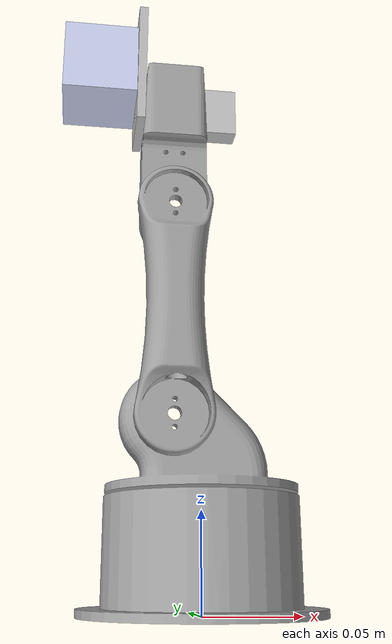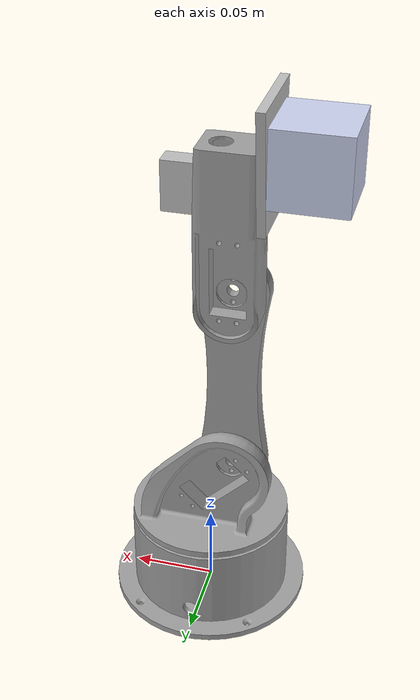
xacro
<?xml version="1.0" encoding="utf-8"?>
<robot name="robotic_arm" xmlns:xacro="http:///www.ros.org/wiki/xacro">
  <xacro:property name="use_ignition" default="false"/>
  <xacro:include filename="$(find robotic_arm)/urdf/Robot_Arm_control.xacro" />
  <xacro:include filename="$(find robotic_arm)/urdf/Robot_Arm_gazebo.xacro" />
  <xacro:if value="${use_ignition}">
    <xacro:property name="mesh_dir" value="/home/khaled/ros2_ws/src/robotic_arm/meshes"/>
  </xacro:if>
  <xacro:unless value="${use_ignition}">
    <xacro:property name="mesh_dir" value="package://robotic_arm/meshes"/>
  </xacro:unless>
  <link
    name="base_link">
    <inertial>
      <origin
        xyz="-7.5348E-09 -0.00013761 0.017995"
        rpy="0 0 0" />
      <mass
        value="0.83" />
      <inertia
        ixx="0.00014427"
        ixy="6.2688E-11"
        ixz="-2.1919E-11"
        iyy="0.00014507"
        iyz="-5.8994E-08"
        izz="0.00022021" />
    </inertial>
    <visual>
      <origin
        xyz="0 0 0"
        rpy="0 0 0" />
      <geometry>
        <mesh
          filename="${mesh_dir}/base_link.STL" />
      </geometry>
      <material
        name="">
        <color
          rgba="0.62745 0.62745 0.62745 1" />
      </material>

    </visual>
    <collision>
      <origin
        xyz="0 0 0"
        rpy="0 0 0" />
      <geometry>
        <mesh
          filename="${mesh_dir}/base_link.STL" />
      </geometry>
    </collision>
  </link>
  <link
    name="waist_Link">
    <inertial>
      <origin
        xyz="0.0074946 0.019383 -0.0014293"
        rpy="0 0 0" />
      <mass
        value="0.073648" />
      <inertia
        ixx="6.7954E-05"
        ixy="-6.43E-06"
        ixz="2.5439E-07"
        iyy="6.0133E-05"
        iyz="6.7307E-06"
        izz="5.0282E-05" />
    </inertial>
    <visual>
      <origin
        xyz="0 0 0"
        rpy="0 0 0" />
      <geometry>
        <mesh
          filename="${mesh_dir}/waist_Link.STL" />
      </geometry>
      <material
        name="">
        <color
          rgba="0.62745 0.62745 0.62745 1" />
      </material>
    </visual>
    <collision>
      <origin
        xyz="0 0 0"
        rpy="0 0 0" />
      <geometry>
        <mesh
          filename="${mesh_dir}/waist_Link.STL" />
      </geometry>
    </collision>
  </link>
  <joint
    name="base_waist_joint"
    type="revolute">
    <origin
      xyz="0 0 0.0575"
      rpy="1.5708 0 1.5708" />
    <parent
      link="base_link" />
    <child
      link="waist_Link" />
    <axis
      xyz="0 1 0" />
    <limit
      lower="-1.571"
      upper="1.571"
      effort="10"
      velocity="3" />
  </joint>
  <link
    name="arm_Link">
    <inertial>
      <origin
        xyz="1.0586E-07 0.06 -0.0049709"
        rpy="0 0 0" />
      <mass
        value="0.064059" />
      <inertia
        ixx="0.00010375"
        ixy="3.5389E-10"
        ixz="1.0836E-10"
        iyy="9.2286E-06"
        iyz="-4.5873E-12"
        izz="0.00010863" />
    </inertial>
    <visual>
      <origin
        xyz="0 0 0"
        rpy="0 0 0" />
      <geometry>
        <mesh
          filename="${mesh_dir}/arm_Link.STL" />
      </geometry>
      <material
        name="">
        <color
          rgba="0.62745 0.62745 0.62745 1" />
      </material>
    </visual>
    <collision>
      <origin
        xyz="0 0 0"
        rpy="0 0 0" />
      <geometry>
        <mesh
          filename="${mesh_dir}/arm_Link.STL" />
      </geometry>
    </collision>
  </link>
  <joint
    name="waist_arm_joint"
    type="revolute">
    <origin
      xyz="0 0.04028 -0.01391"
      rpy="0 1.5708 0" />
    <parent
      link="waist_Link" />
    <child
      link="arm_Link" />
    <axis
      xyz="0 0 1" />
    <limit
      lower="-1.571"
      upper="1.571"
      effort="10"
      velocity="3" />
  </joint>
  <link
    name="end_Link">
    <inertial>
      <origin
        xyz="0.041711 3.1659E-05 -0.00972"
        rpy="0 0 0" />
      <mass
        value="0.047098" />
      <inertia
        ixx="8.7227E-06"
        ixy="-6.9702E-08"
        ixz="-4.0365E-07"
        iyy="5.1401E-05"
        iyz="-1.8365E-10"
        izz="5.4665E-05" />
    </inertial>
    <visual>
      <origin
        xyz="0 0 0"
        rpy="0 0 0" />
      <geometry>
        <mesh
          filename="${mesh_dir}/end_Link.STL" />
      </geometry>
      <material
        name="">
        <color
          rgba="0.62745 0.62745 0.62745 1" />
      </material>
    </visual>
    <collision>
      <origin
        xyz="0 0 0"
        rpy="0 0 0" />
      <geometry>
        <mesh
          filename="${mesh_dir}/end_Link.STL" />
      </geometry>
    </collision>
  </link>
  <joint
    name="arm_end_joint"
    type="revolute">
    <origin
      xyz="0 0.12 0"
      rpy="3.1416 0 1.5708" />
    <parent
      link="arm_Link" />
    <child
      link="end_Link" />
    <axis
      xyz="0 0 -1" />
    <limit
      lower="-1.571"
      upper="1.571"
      effort="10"
      velocity="3" />
  </joint>
  <link
    name="support_Link">
    <inertial>
      <origin
        xyz="0.0096128 0.01329 0.0015"
        rpy="0 0 0" />
      <mass
        value="0.032654" />
      <inertia
        ixx="8.6378E-06"
        ixy="-1.6109E-07"
        ixz="3.8781E-22"
        iyy="1.0677E-05"
        iyz="-1.0792E-21"
        izz="1.2956E-05" />
    </inertial>
    <visual>
      <origin
        xyz="0 0 0"
        rpy="0 0 0" />
      <geometry>
        <mesh
          filename="${mesh_dir}/support_Link.STL" />
      </geometry>
      <material
        name="">
        <color
          rgba="0.75294 0.75294 0.75294 1" />
      </material>
    </visual>
    <collision>
      <origin
        xyz="0 0 0"
        rpy="0 0 0" />
      <geometry>
        <mesh
          filename="${mesh_dir}/support_Link.STL" />
      </geometry>
    </collision>
  </link>
  <joint
    name="end_support_joint"
    type="fixed">
    <origin
      xyz="0.065057 -0.0082418 -0.011"
      rpy="0 0 0" />
    <parent
      link="end_Link" />
    <child
      link="support_Link" />
    <axis
      xyz="0 0 0" />
  </joint>

  <link
    name="cam_Link">
    <inertial>
      <origin
        xyz="-0.04 -0.022 -0.021"
        rpy="0 0 0" />
      <mass
        value="0.079507" />
      <inertia
        ixx="2.4501E-05"
        ixy="-1.8211E-21"
        ixz="-5.7909E-22"
        iyy="2.4501E-05"
        iyz="-2.7946E-23"
        izz="2.4501E-05" />
    </inertial>
    <visual>
      <origin
        xyz="-0.04 -0.022 -0.021"
        rpy="0 0 0" />
      <geometry>
        <mesh
          filename="${mesh_dir}/cam_Link.STL" />
      </geometry>
      <material
        name="">
        <color
          rgba="0.79216 0.81961 0.93333 1" />
      </material>
    </visual>
    <collision>
      <origin
        xyz="0 0 0"
        rpy="0 0 0" />
      <geometry>
        <mesh
          filename="${mesh_dir}/cam_Link.STL" />
      </geometry>
    </collision>
  </link>
  <joint
    name="support_cam_joint"
    type="fixed">
    <origin
      xyz="0.04 0.0525 0.0005"
      rpy="-1.570 0 0" />
    <parent
      link="support_Link" />
    <child
      link="cam_Link" />
    <axis
      xyz="0 0 0" />
  </joint>

  <!-- Robot Tip -->
  <link name="tip_link"/>
  <joint name="support_tip_joint" type="fixed">
    <parent link="support_Link"/>
    <child link="tip_link"/>
    <origin xyz="0.025 0.004 0.001" rpy="0 0 0"/>
  </joint>
  <!-- fix the robot to the world -->
  <link name="world"/>
  <joint name="world_fixed_joint" type="fixed">
    <parent link="world"/>
    <child link="base_link"/>
    <origin xyz="0 0 0" rpy="0 0 0"/>
  </joint>

  <xacro:macro name="control" params="joint">
    <transmission name="${joint}_transmission">
      <plugin>transmission_interface/SimpleTransmission</plugin >
      <joint name="${joint}_joint">
        <hardwareInterface>position</hardwareInterface>
        <hardwareInterface>velocity</hardwareInterface>
        <mechanicalReduction>1.0</mechanicalReduction>
      </joint>
      <actuator name="${joint}_motor">
        <hardwareInterface>position</hardwareInterface>
        <hardwareInterface>velocity</hardwareInterface>
        <mechanicalReduction>1.0</mechanicalReduction>
      </actuator>
    </transmission>
  </xacro:macro>

  <xacro:control joint="base_waist"/>
  <xacro:control joint="waist_arm"/>
  <xacro:control joint="arm_end"/>

  <link name="cam_Link_optical">
    </link>
    <joint name="cam_Link_joint" type="fixed">
        <origin xyz="0 0 0" rpy="${-pi/2} 0 ${-pi/2}"/>
        <parent link="cam_Link"/>
        <child link="cam_Link_optical"/>
    </joint>
  <xacro:if value="${use_ignition}">
    <gazebo reference="camera_link">
      <sensor name="camera_sensor" type="camera">
        <pose>0 0 0 0 0 0</pose>
        <camera>
          <horizontal_fov>1.047</horizontal_fov>
          <image>
            <width>640</width>
            <height>480</height>
            <format>R8G8B8</format>
          </image>
          <clip>
            <near>0.1</near>
            <far>100</far>
          </clip>
        </camera>
        <always_on>true</always_on>
        <update_rate>30.0</update_rate>
        <visualize>true</visualize>
      </sensor>
    </gazebo>
  </xacro:if>
  <xacro:unless value="${use_ignition}">
    <gazebo reference="cam_Link">
        <material>Gazebo/Red</material>
        <sensor name="camera_sensor" type="camera">
            <pose>0 0 0 0 0 0</pose>
            <visualize>true</visualize>
            <update_rate>10.0</update_rate>
            <camera name="cam">
              <horizontal_fov>1.3962634</horizontal_fov>
              <image>
                <width>1280</width>
                <height>1280</height>
                <format>R8G8B8</format>
              </image>
            </camera>
            <plugin name="camera_controller" filename="libgazebo_ros_camera.so">
                <frame_name>cam_link_optical</frame_name>
                <image_width>1280</image_width>
                <image_height>1280</image_height>
                <update_rate>10.0</update_rate>
            </plugin>
        </sensor>
    </gazebo>
  </xacro:unless>
</robot>
